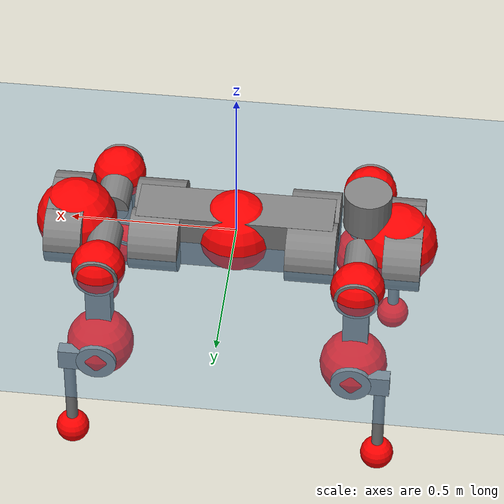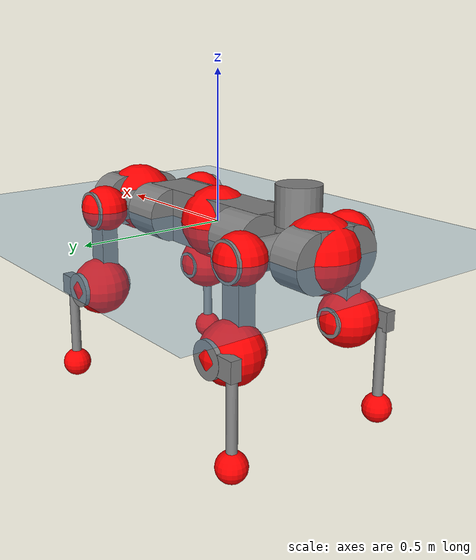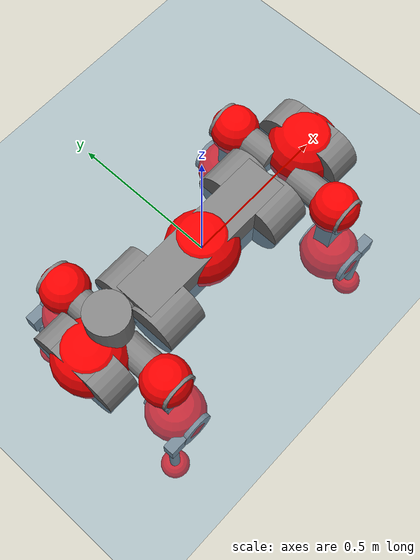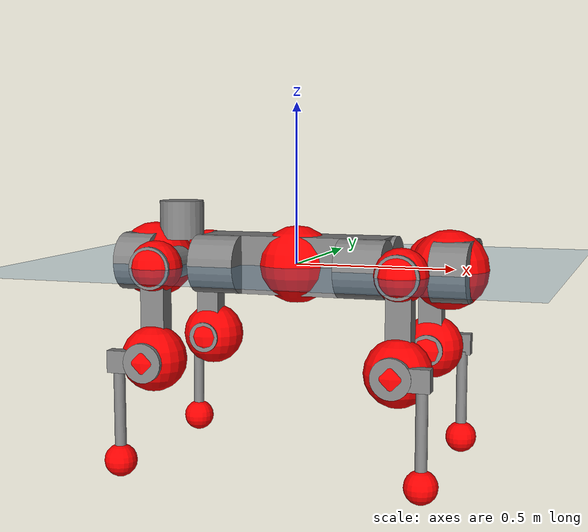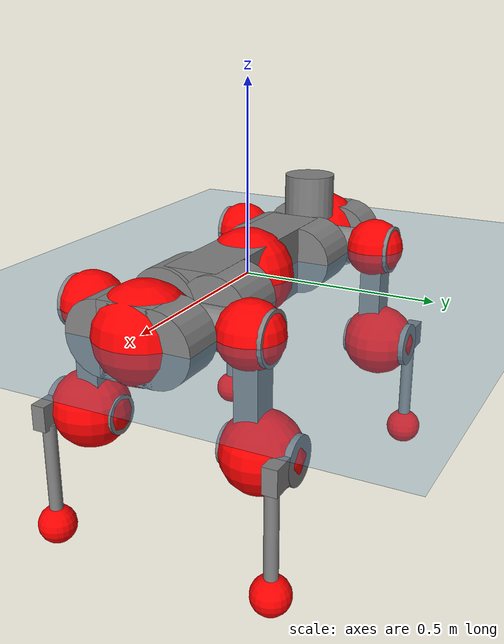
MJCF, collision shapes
<mujoco model="anymal_c">
  <compiler angle="radian" assetdir="assets" balanceinertia="true" inertiafromgeom="false"/>

  <option timestep="0.005" density="1.2" viscosity="2e-05"/>

  <size nkey="1"/>

  <visual>
    <quality shadowsize="8192"/>
    <map shadowclip="0.5"/>
  </visual>

  <default>
    <default class="/">
      <material specular="0" shininess="0.25"/>
      <geom contype="0" conaffinity="0" group="1" solref="-1000 -80"/>
      <site size="0.01 0.005 0.005" group="5"/>
      <general forcelimited="true" forcerange="-80 80" biastype="affine" gainprm="80" biasprm="0 -80 -2"/>
      <default class="anymal_c">
        <joint armature="0.01" damping="0.01" frictionloss="0.1"/>
        <default class="visual">
          <geom type="mesh" group="2"/>
          <default class="visual_zflip"/>
        </default>
        <default class="collision">
          <geom type="cylinder" group="3"/>
          <default class="foot">
            <geom size="0.03 0 0" type="sphere" condim="6" priority="1" friction="0.8 0.02 0.01" solimp="0.015 1 0.03"/>
          </default>
        </default>
      </default>
      <default class="reward_collision_sphere">
        <geom group="5" rgba="1 0 0 1"/>
      </default>
    </default>
  </default>

  <asset>
    <texture type="skybox" colorspace="auto" name="//unnamed_texture_0" builtin="gradient" rgb1="0.95 0.95 0.95" rgb2="0.95 0.95 0.95" width="100" height="600"/>
    <texture type="2d" colorspace="auto" name="texplane" builtin="checker" rgb1="0.345 0.575 0.748" rgb2="0.345 0.575 0.748" markrgb="1 1 1" width="512" height="512"/>
    <texture type="2d" colorspace="linear" name="base" file="base.png"/>
    <texture type="2d" colorspace="linear" name="top_shell" file="top_shell.png"/>
    <texture type="2d" colorspace="linear" name="bottom_shell" file="bottom_shell.png"/>
    <texture type="2d" colorspace="linear" name="remote" file="remote.png"/>
    <texture type="2d" colorspace="linear" name="hatch" file="hatch.png"/>
    <texture type="2d" colorspace="linear" name="handle" file="handle.png"/>
    <texture type="2d" colorspace="linear" name="face" file="face.png"/>
    <texture type="2d" colorspace="linear" name="battery" file="battery.png"/>
    <texture type="2d" colorspace="linear" name="lidar_cage" file="lidar_cage.png"/>
    <texture type="2d" colorspace="linear" name="depth_camera" file="depth_camera.png"/>
    <texture type="2d" colorspace="linear" name="wide_angle_camera" file="wide_angle_camera.png"/>
    <texture type="2d" colorspace="linear" name="lidar" file="lidar.png"/>
    <texture type="2d" colorspace="linear" name="drive" file="drive.png"/>
    <texture type="2d" colorspace="linear" name="hip_l" file="hip_l.png"/>
    <texture type="2d" colorspace="linear" name="shank_l" file="shank_l.png"/>
    <texture type="2d" colorspace="linear" name="foot" file="foot.png"/>
    <texture type="2d" colorspace="linear" name="thigh" file="thigh.png"/>
    <texture type="2d" colorspace="linear" name="shank_r" file="shank_r.png"/>
    <texture type="2d" colorspace="linear" name="hip_r" file="hip_r.png"/>
    <material name="MatPlane" class="/" texture="texplane" texuniform="true" texrepeat="2 2" specular="0.9" shininess="0.5"/>
    <material name="black_plastic" class="/" rgba="0.007 0.007 0.007 1"/>
    <material name="green" class="/" rgba="0.052 0.178 0.033 1"/>
    <material name="red" class="/" rgba="0.178 0.006 0.005 1"/>
    <material name="yellow" class="/" rgba="0.178 0.119 0.006 1"/>
    <material name="lwl" class="/" rgba="0.8 0.8 0.8 1"/>
    <material name="base" class="/" texture="base"/>
    <material name="top_shell" class="/" texture="top_shell"/>
    <material name="bottom_shell" class="/" texture="bottom_shell"/>
    <material name="hip_l" class="/" texture="hip_l"/>
    <material name="thigh" class="/" texture="thigh"/>
    <material name="shank_l" class="/" texture="shank_l"/>
    <material name="foot" class="/" texture="foot"/>
    <material name="hip_r" class="/" texture="hip_r"/>
    <material name="shank" class="/" texture="shank_r"/>
    <material name="hatch" class="/" texture="hatch"/>
    <material name="remote" class="/" texture="remote"/>
    <material name="handle" class="/" texture="handle"/>
    <material name="face" class="/" texture="face"/>
    <material name="depth_camera" class="/" texture="depth_camera"/>
    <material name="wide_angle_camera" class="/" texture="wide_angle_camera"/>
    <material name="battery" class="/" texture="battery"/>
    <material name="lidar_cage" class="/" texture="lidar_cage"/>
    <material name="lidar" class="/" texture="lidar"/>
    <material name="drive" class="/" texture="drive"/>
    <mesh name="base_0" class="/" file="base_0.obj"/>
    <mesh name="base_1" class="/" file="base_1.obj"/>
    <mesh name="base_2" class="/" file="base_2.obj"/>
    <mesh name="base_3" class="/" file="base_3.obj"/>
    <mesh name="base_4" class="/" file="base_4.obj"/>
    <mesh name="base_5" class="/" file="base_5.obj"/>
    <mesh name="top_shell" class="/" file="top_shell.obj"/>
    <mesh name="bottom_shell" class="/" file="bottom_shell.obj"/>
    <mesh name="remote" class="/" file="remote.obj"/>
    <mesh name="handle" class="/" file="handle.obj"/>
    <mesh name="face" class="/" file="face.obj"/>
    <mesh name="wide_angle_camera" class="/" file="wide_angle_camera.obj"/>
    <mesh name="depth_camera" class="/" file="depth_camera.obj"/>
    <mesh name="battery" class="/" file="battery.obj"/>
    <mesh name="lidar_cage" class="/" file="lidar_cage.obj"/>
    <mesh name="lidar" class="/" file="lidar.obj"/>
    <mesh name="drive" class="/" file="drive.obj"/>
    <mesh name="hip_l" class="/" file="hip_l.obj"/>
    <mesh name="thigh" class="/" file="thigh.obj"/>
    <mesh name="shank_l" class="/" file="shank_l.obj"/>
    <mesh name="foot" class="/" file="foot.obj"/>
    <mesh name="hip_r" class="/" file="hip_r.obj"/>
    <mesh name="hatch" class="/" file="hatch.obj"/>
    <mesh name="shank_r" class="/" file="shank_r.obj"/>
  </asset>

  <worldbody>
    <geom name="floor" class="/" size="100 100 0.125" type="plane" group="0" material="MatPlane"/>
    <light name="toplight_shadow" class="/" pos="0 0 5" dir="0.0990148 0.0990148 -0.990148" type="directional" ambient="0.04 0.04 0.04" diffuse="0.55 0.55 0.55" specular="0.12 0.12 0.12"/>
    <light name="toplight_fill" class="/" pos="0 0 5" dir="0.0990148 0.0990148 -0.990148" type="directional" castshadow="false" ambient="0.04 0.04 0.04" diffuse="0.3 0.3 0.3" specular="0.08 0.08 0.08"/>
    <body name="trunk" childclass="anymal_c" pos="0.000917504 0.000223836 -0.00102213" quat="1 0.000326692 -0.000107835 -1.67195e-05">
      <inertial pos="-3.61677e-05 -0.00206524 0.0485517" quat="0.498197 0.50242 0.500605 0.498767" mass="20.4783" diaginertia="0.912861 0.568261 0.199823"/>
      <joint name="//unnamed_joint_0" type="free" armature="0" damping="0" frictionloss="0"/>
      <geom name="//unnamed_geom_1" class="visual" material="green" mesh="base_0"/>
      <geom name="//unnamed_geom_2" class="visual" material="yellow" mesh="base_1"/>
      <geom name="//unnamed_geom_3" class="visual" material="red" mesh="base_2"/>
      <geom name="//unnamed_geom_4" class="visual" material="black_plastic" mesh="base_3"/>
      <geom name="//unnamed_geom_5" class="visual" material="lwl" mesh="base_4"/>
      <geom name="//unnamed_geom_6" class="visual" material="base" mesh="base_5"/>
      <geom name="trunk_1" class="collision" size="0.293732 0.0709008 0.0911582" type="box"/>
      <geom name="trunk_2" class="collision" size="0.0911582 0.073433" pos="0.233414 0.0686726 0" quat="0.707107 0 0.707107 0"/>
      <geom name="trunk_3" class="collision" size="0.0911582 0.073433" pos="-0.233414 0.0686726 0" quat="0.707107 0 0.707107 0"/>
      <geom name="trunk_4" class="collision" size="0.0911582 0.073433" pos="0.233414 -0.0686726 0" quat="0.707107 0 0.707107 0"/>
      <geom name="trunk_5" class="collision" size="0.0911582 0.073433" pos="-0.233414 -0.0686726 0" quat="0.707107 0 0.707107 0"/>
      <geom name="//unnamed_geom_12" class="visual" material="top_shell" mesh="top_shell"/>
      <geom name="//unnamed_geom_13" class="visual" material="bottom_shell" mesh="bottom_shell"/>
      <geom name="//unnamed_geom_14" class="visual" material="remote" mesh="remote"/>
      <geom name="//unnamed_geom_15" class="visual" material="handle" mesh="handle"/>
      <geom name="//unnamed_geom_16" class="visual" pos="0.444829 0 0" quat="1 0 0 0" material="face" mesh="face"/>
      <geom name="trunk_6" class="collision" size="0.0557078 0.0709008 0.0911582" pos="0.503853 0 0" type="box"/>
      <geom name="//unnamed_geom_18" class="collision" size="0.0911582 0.0557078" pos="0.503853 0.0686726 0" quat="0.707107 0 0.707107 0"/>
      <geom name="//unnamed_geom_19" class="collision" size="0.0911582 0.0557078" pos="0.503853 -0.0686726 0" quat="0.707107 0 0.707107 0"/>
      <geom name="//unnamed_geom_20" class="visual" pos="0.495425 0 -0.0280698" quat="0.965926 0 0.258819 0" material="depth_camera" mesh="depth_camera"/>
      <geom name="//unnamed_geom_21" class="visual" pos="0.550536 0 0.0147365" material="wide_angle_camera" mesh="wide_angle_camera"/>
      <geom name="//unnamed_geom_22" class="visual_zflip" pos="-0.444829 0 0" quat="0 0 0 1" material="face" mesh="face"/>
      <geom name="trunk_7" class="collision" size="0.0557078 0.0709008 0.0911582" pos="-0.503853 0 0" quat="0 0 0 1" type="box"/>
      <geom name="//unnamed_geom_24" class="collision" size="0.0911582 0.0557078" pos="-0.503853 -0.0686726 0" quat="0 -0.707107 0 0.707107"/>
      <geom name="//unnamed_geom_25" class="collision" size="0.0911582 0.0557078" pos="-0.503853 0.0686726 0" quat="0 -0.707107 0 0.707107"/>
      <geom name="//unnamed_geom_26" class="visual" pos="-0.495425 0 -0.0280698" quat="0 -0.258819 0 0.965926" material="depth_camera" mesh="depth_camera"/>
      <geom name="//unnamed_geom_27" class="visual_zflip" pos="-0.550536 0 0.0147365" quat="0 0 0 1" material="wide_angle_camera" mesh="wide_angle_camera"/>
      <geom name="//unnamed_geom_28" class="visual" material="battery" mesh="battery"/>
      <geom name="//unnamed_geom_29" class="visual" pos="0 0.0737975 0.0292715" quat="0.683013 -0.183013 0.183013 0.683013" material="depth_camera" mesh="depth_camera"/>
      <geom name="//unnamed_geom_30" class="visual" pos="0 -0.0737975 0.0292715" quat="0.683013 0.183013 0.183013 -0.683013" material="depth_camera" mesh="depth_camera"/>
      <geom name="//unnamed_geom_31" class="visual" pos="-0.390634 0 0.0723534" quat="1 0 0 0" material="lidar_cage" mesh="lidar_cage"/>
      <geom name="trunk_8" class="collision" size="0.0709008 0.0607721" pos="-0.390634 0 0.131417"/>
      <geom name="//unnamed_geom_33" class="visual" pos="-0.390634 -3.61959e-05 0.139982" quat="0.707107 0 0 -0.707107" material="lidar" mesh="lidar"/>
      <geom name="//unnamed_geom_34" class="visual" pos="0.321843 0.102029 -5.79956e-11" quat="0.258819 0.965926 0 0" material="drive" mesh="drive"/>
      <geom name="//unnamed_geom_35" class="visual" pos="0.321843 -0.102029 5.79956e-11" quat="0.258819 -0.965926 0 0" material="drive" mesh="drive"/>
      <geom name="//unnamed_geom_36" class="visual" pos="-0.321843 0.102029 5.79956e-11" quat="0 0 0.965926 -0.258819" material="drive" mesh="drive"/>
      <geom name="//unnamed_geom_37" class="visual" pos="-0.321843 -0.102029 -5.79956e-11" quat="0 0 -0.965926 -0.258819" material="drive" mesh="drive"/>
      <geom name="//unnamed_geom_38" class="visual" pos="0.124488 0 0.0718612" quat="1 0 0 0" material="hatch" mesh="hatch"/>
      <geom name="//unnamed_geom_39" class="reward_collision_sphere" size="0.121544"/>
      <geom name="//unnamed_geom_40" class="reward_collision_sphere" size="0.121544" pos="0.482926 0 0"/>
      <geom name="//unnamed_geom_41" class="reward_collision_sphere" size="0.121544" pos="-0.482926 0 0"/>
      <site name="imu" pos="0.278355 0.00759868 0.0342758" size="0.0101287"/>
      <camera name="track" pos="0 -1.96208 0" quat="0.707107 0.707107 0 0" mode="trackcom"/>
      <camera name="ego_camera" pos="0.482926 0 -0.039376" quat="-0.5 -0.5 0.5 0.5"/>
      <body name="LF_HIP" pos="0.32115 0.101236 -0.000396422" quat="0.258802 0.96593 -1.13386e-05 1.55661e-05">
        <inertial pos="0.0609215 -0.0158478 -0.00860198" quat="-0.127485 0.709613 -0.135607 0.679564" mass="2.78507" diaginertia="0.00803771 0.00424132 0.0029485"/>
        <joint name="LF_HAA" pos="0 0 0" axis="0.999987 0.00468235 -0.00178722" range="-0.719721 0.472692" armature="0.0102865" damping="0.0110752" frictionloss="0.0979998"/>
        <geom name="//unnamed_geom_42" class="visual" pos="0 -3.41162e-06 5.60355e-07" quat="0.258819 -0.965926 0 0" material="hip_l" mesh="hip_l"/>
        <geom name="//unnamed_geom_43" class="visual" pos="0.0642828 -0.0766805 -0.0442964" quat="0.183013 -0.683013 0.683013 0.183013" material="drive" mesh="drive"/>
        <geom name="//unnamed_geom_44" class="collision" size="0.0506434 0.0709008" pos="0.0642828 -0.011733 -0.00679728" quat="-0.353553 -0.612372 0.612372 -0.353553"/>
        <body name="LF_THIGH" pos="0.0647717 -0.0693313 -0.0412416" quat="0.183506 -0.68242 0.683297 0.18367">
          <inertial pos="0.0336846 7.7643e-05 -0.241962" quat="0.993221 -0.0118905 -0.0802491 0.0832452" mass="3.13408" diaginertia="0.0428295 0.0261364 0.003792"/>
          <joint name="LF_HFE" pos="0 0 0" axis="0.999999 -0.0011942 0.000378017" stiffness="0.00407923" range="-3.10615 3.14914" armature="0.0106008" damping="0.015068" frictionloss="0.10146"/>
          <geom name="//unnamed_geom_45" class="visual" pos="0.00183305 2.88846e-06 0" quat="0.707107 0 0 -0.707107" material="thigh" mesh="thigh"/>
          <geom name="//unnamed_geom_46" class="collision" size="0.0658365 0.0405148" pos="0.0429268 0 0" quat="0.5 0.5 -0.5 -0.5"/>
          <geom name="//unnamed_geom_47" class="collision" size="0.0379826 0.0303861 0.143133" pos="0.0321951 0 -0.139109" quat="0.707107 0 0 -0.707107" type="box"/>
          <geom name="//unnamed_geom_48" class="visual" pos="0.107639 0 -0.280554" quat="1 0 0 0" material="drive" mesh="drive"/>
          <geom name="//unnamed_geom_49" class="collision" size="0.0506434 0.0709008" pos="0.032517 0 -0.280554" quat="0.707107 0 0.707107 0"/>
          <geom name="//unnamed_geom_50" class="reward_collision_sphere" size="0.0810295" pos="0.0268292 0 0"/>
          <body name="LF_SHANK" pos="0.107348 0.00161687 -0.281704" quat="1 0.0001183 0.000334589 9.77758e-05">
            <inertial pos="0.00602683 -0.0607516 -0.0788805" quat="0.993034 -0.114887 -0.00103752 -0.0261413" mass="0.612555" diaginertia="0.0142119 0.00847755 0.00103066"/>
            <joint name="LF_KFE" pos="0 0 0" axis="1 0.000253596 -2.68838e-05" range="-3.13003 3.13313" armature="0.00963357" damping="0.0124614" frictionloss="0.099642"/>
            <geom name="//unnamed_geom_51" class="visual" pos="0.000597718 0.00318706 0" quat="0.707107 0 0 -0.707107" material="shank_l" mesh="shank_l"/>
            <geom name="LF_kfe_act" class="collision" size="0.0607721 0.0202574" pos="0.0214634 0 0" quat="0.5 0.5 -0.5 -0.5"/>
            <geom name="//unnamed_geom_53" class="collision" size="0.0582389 0.0341843 0.0192445" pos="0.0214634 -0.0564087 0" quat="0.5 0.5 -0.5 -0.5" type="box"/>
            <geom name="//unnamed_geom_54" class="visual" pos="0.0140047 -0.0852552 -0.332698" quat="0.382683 0 0 -0.92388" material="foot" mesh="foot"/>
            <geom name="LF_calf" class="collision" size="0.0177252 0.14307" pos="0.0140049 -0.0862823 -0.166349" quat="0.707107 0 0 -0.707107"/>
            <geom name="LF_foot" class="foot" size="0.0299668" pos="0.0140049 -0.0862823 -0.310549" quat="0.707107 0 0 -0.707107"/>
            <geom name="//unnamed_geom_57" class="reward_collision_sphere" size="0.101287" pos="-0.0536585 0 0"/>
            <geom name="//unnamed_geom_58" class="reward_collision_sphere" size="0.0506434" pos="0.0140049 -0.0862823 -0.310549"/>
            <site name="LF_foot" class="foot" pos="0.0140049 -0.0862823 -0.310549" quat="0.707107 0 0 -0.707107" size="0.0101287"/>
          </body>
        </body>
      </body>
      <body name="RF_HIP" pos="0.320094 -0.102109 0.0014617" quat="0.258742 -0.965947 -2.74128e-05 0.000128177">
        <inertial pos="0.0605959 0.0128244 -0.00886354" quat="0.123043 0.681173 0.127124 0.710424" mass="2.86247" diaginertia="0.0081668 0.00458489 0.00298885"/>
        <joint name="RF_HAA" pos="0 0 0" axis="0.999986 0.00225398 -0.00481344" stiffness="0.000435121" range="-0.493842 0.717195" armature="0.0101804" damping="0.00352098" frictionloss="0.0963303"/>
        <geom name="//unnamed_geom_59" class="visual" pos="0 3.41159e-06 5.60354e-07" quat="0.258819 0.965926 0 0" material="hip_r" mesh="hip_r"/>
        <geom name="//unnamed_geom_60" class="visual" pos="0.0642828 0.0766805 -0.0442964" quat="0.183013 0.683013 0.683013 -0.183013" material="drive" mesh="drive"/>
        <geom name="//unnamed_geom_61" class="collision" size="0.0506434 0.0709008" pos="0.0642828 0.011733 -0.00679728" quat="-0.353553 0.612372 0.612372 0.353553"/>
        <body name="RF_THIGH" pos="0.0644221 0.0717007 -0.0432768" quat="0.183138 0.682684 0.683428 -0.182564">
          <inertial pos="0.0354596 0.00101475 -0.241427" quat="0.992709 -0.0049176 -0.0812182 0.0889276" mass="3.26443" diaginertia="0.043076 0.0267281 0.00399989"/>
          <joint name="RF_HFE" pos="0 0 0" axis="0.999999 -0.00074513 -0.000668844" stiffness="0.000636312" range="-3.16238 3.1459" armature="0.00989193" damping="0.01143" frictionloss="0.0971711"/>
          <geom name="//unnamed_geom_62" class="visual" pos="0.00183305 2.88846e-06 0" quat="0.707107 0 0 -0.707107" material="thigh" mesh="thigh"/>
          <geom name="//unnamed_geom_63" class="collision" size="0.0658365 0.0405148" pos="0.0429268 0 0" quat="0.5 0.5 0.5 0.5"/>
          <geom name="//unnamed_geom_64" class="collision" size="0.0379826 0.0303861 0.143133" pos="0.0321951 0 -0.139109" quat="0.707107 0 0 0.707107" type="box"/>
          <geom name="//unnamed_geom_65" class="visual" pos="0.107639 0 -0.280554" quat="1 0 0 0" material="drive" mesh="drive"/>
          <geom name="//unnamed_geom_66" class="collision" size="0.0506434 0.0709008" pos="0.032517 0 -0.280554" quat="0.707107 0 0.707107 0"/>
          <geom name="//unnamed_geom_67" class="reward_collision_sphere" size="0.0810295" pos="0.0268292 0 0"/>
          <body name="RF_SHANK" pos="0.10726 -0.000310875 -0.279335" quat="1 7.5803e-08 -3.14136e-06 -3.07724e-07">
            <inertial pos="0.00486498 0.0601711 -0.0791781" quat="0.992137 0.123622 0.00565799 0.0186863" mass="0.622869" diaginertia="0.0145655 0.00861061 0.0010526"/>
            <joint name="RF_KFE" pos="0 0 0" axis="1 -0.000387167 0.000302921" range="-3.18044 3.13205" armature="0.0109695" damping="0.0202855" frictionloss="0.0978904"/>
            <geom name="//unnamed_geom_68" class="visual" pos="0.000597715 -0.00318706 0" quat="0.707107 0 0 0.707107" material="shank" mesh="shank_r"/>
            <geom name="RF_kfe_act" class="collision" size="0.0607721 0.0202574" pos="0.0214634 0 0" quat="0.5 0.5 0.5 0.5"/>
            <geom name="//unnamed_geom_70" class="collision" size="0.0582389 0.0341843 0.0192445" pos="0.0214634 0.0564087 0" quat="0.5 0.5 0.5 0.5" type="box"/>
            <geom name="//unnamed_geom_71" class="visual" pos="0.014005 0.0852552 -0.332698" quat="0.382683 0 0 0.92388" material="foot" mesh="foot"/>
            <geom name="RF_calf" class="collision" size="0.0177252 0.14307" pos="0.0140049 0.0862823 -0.166349" quat="0.707107 0 0 0.707107"/>
            <geom name="RF_foot" class="foot" size="0.0278872" pos="0.0140049 0.0862823 -0.310549" quat="0.707107 0 0 0.707107"/>
            <geom name="//unnamed_geom_74" class="reward_collision_sphere" size="0.101287" pos="-0.0536585 0 0"/>
            <geom name="//unnamed_geom_75" class="reward_collision_sphere" size="0.0506434" pos="0.0140049 0.0862823 -0.310549"/>
            <site name="RF_foot" class="foot" pos="0.0140049 0.0862823 -0.310549" quat="0.707107 0 0 0.707107" size="0.0101287"/>
          </body>
        </body>
      </body>
      <body name="LH_HIP" pos="-0.319103 0.101426 -0.00074251" quat="-0.000181929 -0.000168981 0.965927 -0.258816">
        <inertial pos="0.0609874 0.0154733 -0.0106447" quat="0.128575 0.681096 0.130331 0.708936" mass="2.96986" diaginertia="0.00886027 0.00464232 0.00313845"/>
        <joint name="LH_HAA" pos="0 0 0" axis="0.999954 -0.000888113 0.00952512" range="-0.488211 0.702772" armature="0.00998213" damping="0" frictionloss="0.100778"/>
        <geom name="//unnamed_geom_76" class="visual" pos="0 3.41159e-06 5.60354e-07" quat="-0.258819 -0.965926 0 0" material="hip_r" mesh="hip_r"/>
        <geom name="//unnamed_geom_77" class="visual" pos="0.0642828 0.0766805 -0.0442964" quat="0.183013 0.683013 0.683013 -0.183013" material="drive" mesh="drive"/>
        <geom name="//unnamed_geom_78" class="collision" size="0.0506434 0.0709008" pos="0.0642828 0.011733 -0.00679728" quat="-0.353553 0.612372 0.612372 0.353553"/>
        <body name="LH_THIGH" pos="0.0640665 0.0714718 -0.0427407" quat="0.182398 0.682976 0.683185 -0.183119">
          <inertial pos="0.0305839 -0.00112228 -0.244072" quat="0.992751 -0.00651801 -0.0814042 0.0881798" mass="3.18851" diaginertia="0.0412386 0.0271468 0.00377801"/>
          <joint name="LH_HFE" pos="0 0 0" axis="0.999998 0.00115997 0.00156268" stiffness="0.00561449" range="-3.13595 3.12764" armature="0.00985169" damping="0.00234002" frictionloss="0.101155"/>
          <geom name="//unnamed_geom_79" class="visual" pos="0.00183305 2.88846e-06 0" quat="0.707107 0 0 -0.707107" material="thigh" mesh="thigh"/>
          <geom name="//unnamed_geom_80" class="collision" size="0.0658365 0.0405148" pos="0.0429268 0 0" quat="0.5 0.5 -0.5 -0.5"/>
          <geom name="//unnamed_geom_81" class="collision" size="0.0379826 0.0303861 0.143133" pos="0.0321951 0 -0.139109" quat="0.707107 0 0 -0.707107" type="box"/>
          <geom name="//unnamed_geom_82" class="visual" pos="0.107639 0 -0.280554" quat="1 0 0 0" material="drive" mesh="drive"/>
          <geom name="//unnamed_geom_83" class="collision" size="0.0506434 0.0709008" pos="0.032517 0 -0.280554" quat="0.707107 0 0.707107 0"/>
          <geom name="//unnamed_geom_84" class="reward_collision_sphere" size="0.0810295" pos="0.0268292 0 0"/>
          <body name="LH_SHANK" pos="0.108136 -0.00184533 -0.279145" quat="1 1.49618e-05 -5.18165e-05 -0.000115417">
            <inertial pos="0.0055209 0.0619777 -0.0783436" quat="0.992936 0.115479 -0.00136968 0.0272165" mass="0.631817" diaginertia="0.0148012 0.00887006 0.00105385"/>
            <joint name="LH_KFE" pos="0 0 0" axis="0.999984 0.00566952 -0.000120676" range="-3.10874 3.12438" armature="0.0112697" damping="0.0198243" frictionloss="0.0928335"/>
            <geom name="//unnamed_geom_85" class="visual" pos="0.000597715 -0.00318706 0" quat="-0.707107 0 0 -0.707107" material="shank" mesh="shank_r"/>
            <geom name="LH_kfe_act" class="collision" size="0.0607721 0.0202574" pos="0.0214634 0 0" quat="0.5 0.5 -0.5 -0.5"/>
            <geom name="//unnamed_geom_87" class="collision" size="0.0582389 0.0341843 0.0192445" pos="0.0214634 0.0564087 0" quat="0.5 0.5 -0.5 -0.5" type="box"/>
            <geom name="//unnamed_geom_88" class="visual" pos="0.014005 0.0852552 -0.332698" quat="-0.382683 0 0 -0.92388" material="foot" mesh="foot"/>
            <geom name="LH_calf" class="collision" size="0.0177252 0.14307" pos="0.0140049 0.0862823 -0.166349" quat="0.707107 0 0 -0.707107"/>
            <geom name="LH_foot" class="foot" size="0.0306394" pos="0.0140049 0.0862823 -0.310549" quat="0.707107 0 0 -0.707107"/>
            <geom name="//unnamed_geom_91" class="reward_collision_sphere" size="0.101287" pos="-0.0536585 0 0"/>
            <geom name="//unnamed_geom_92" class="reward_collision_sphere" size="0.0506434" pos="0.0140049 0.0862823 -0.310549"/>
            <site name="LH_foot" class="foot" pos="0.0140049 0.0862823 -0.310549" quat="0.707107 0 0 -0.707107" size="0.0101287"/>
          </body>
        </body>
      </body>
      <body name="RH_HIP" pos="-0.319215 -0.102337 1.4671e-05" quat="-5.26934e-05 0.000143344 -0.965897 -0.258926">
        <inertial pos="0.0606452 -0.0153342 -0.0107848" quat="-0.126266 0.702282 -0.13034 0.688381" mass="2.85637" diaginertia="0.00809068 0.00431013 0.0029458"/>
        <joint name="RH_HAA" pos="0 0 0" axis="0.999924 0.00127092 -0.0122644" range="-0.76576 0.489026" armature="0.0105183" damping="0.0102668" frictionloss="0.100695"/>
        <geom name="//unnamed_geom_93" class="visual" pos="0 -3.41162e-06 5.60355e-07" quat="-0.258819 0.965926 0 0" material="hip_l" mesh="hip_l"/>
        <geom name="//unnamed_geom_94" class="visual" pos="0.0642828 -0.0766805 -0.0442964" quat="-0.183013 0.683013 -0.683013 -0.183013" material="drive" mesh="drive"/>
        <geom name="//unnamed_geom_95" class="collision" size="0.0506434 0.0709008" pos="0.0642828 -0.011733 -0.00679728" quat="0.353553 0.612372 -0.612372 0.353553"/>
        <body name="RH_THIGH" pos="0.0665851 -0.0717563 -0.0432695" quat="-0.182535 0.682696 -0.683512 -0.182806">
          <inertial pos="0.033606 4.4869e-08 -0.242516" quat="0.993186 -0.0057201 -0.0799205 0.0846231" mass="3.12741" diaginertia="0.0421839 0.0268487 0.00383971"/>
          <joint name="RH_HFE" pos="0 0 0" axis="0.999995 -0.00145629 0.00273056" stiffness="0.00181209" range="-3.13694 3.16196" armature="0.010279" damping="0.00701569" frictionloss="0.101309"/>
          <geom name="//unnamed_geom_96" class="visual" pos="0.00183305 2.88846e-06 0" quat="0.707107 0 0 -0.707107" material="thigh" mesh="thigh"/>
          <geom name="//unnamed_geom_97" class="collision" size="0.0658365 0.0405148" pos="0.0429268 0 0" quat="0.5 0.5 0.5 0.5"/>
          <geom name="//unnamed_geom_98" class="collision" size="0.0379826 0.0303861 0.143133" pos="0.0321951 0 -0.139109" quat="0.707107 0 0 0.707107" type="box"/>
          <geom name="//unnamed_geom_99" class="visual" pos="0.107639 0 -0.280554" quat="1 0 0 0" material="drive" mesh="drive"/>
          <geom name="//unnamed_geom_100" class="collision" size="0.0506434 0.0709008" pos="0.032517 0 -0.280554" quat="0.707107 0 0.707107 0"/>
          <geom name="//unnamed_geom_101" class="reward_collision_sphere" size="0.0810295" pos="0.0268292 0 0"/>
          <body name="RH_SHANK" pos="0.107319 0.00193916 -0.280018" quat="0.999999 1.83101e-05 0.000239296 0.00105985">
            <inertial pos="0.00757901 -0.059232 -0.0803916" quat="0.993617 -0.109594 -0.00179226 -0.0266672" mass="0.623295" diaginertia="0.0145765 0.00840223 0.00104349"/>
            <joint name="RH_KFE" pos="0 0 0" axis="0.999996 0.00202405 -0.00199903" range="-3.1278 3.1772" armature="0.0100752" damping="0.0202048" frictionloss="0.0977221"/>
            <geom name="//unnamed_geom_102" class="visual" pos="0.000597718 0.00318706 0" quat="0.707107 0 0 -0.707107" material="shank_l" mesh="shank_l"/>
            <geom name="RH_kfe_act" class="collision" size="0.0607721 0.0202574" pos="0.0214634 0 0" quat="0.5 0.5 0.5 0.5"/>
            <geom name="//unnamed_geom_104" class="collision" size="0.0582389 0.0341843 0.0192445" pos="0.0214634 -0.0564087 0" quat="0.5 0.5 0.5 0.5" type="box"/>
            <geom name="//unnamed_geom_105" class="visual" pos="0.0140047 -0.0852552 -0.332698" quat="0.382683 0 0 -0.92388" material="foot" mesh="foot"/>
            <geom name="RH_calf" class="collision" size="0.0177252 0.14307" pos="0.0140049 -0.0862823 -0.166349" quat="0.707107 0 0 0.707107"/>
            <geom name="RH_foot" class="foot" size="0.0281376" pos="0.0140049 -0.0862823 -0.310549" quat="0.707107 0 0 0.707107"/>
            <geom name="//unnamed_geom_108" class="reward_collision_sphere" size="0.101287" pos="-0.0536585 0 0"/>
            <geom name="//unnamed_geom_109" class="reward_collision_sphere" size="0.0506434" pos="0.0140049 -0.0862823 -0.310549"/>
            <site name="RH_foot" class="foot" pos="0.0140049 -0.0862823 -0.310549" quat="0.707107 0 0 0.707107" size="0.0101287"/>
          </body>
        </body>
      </body>
    </body>
  </worldbody>

  <contact>
    <pair class="/" geom1="floor" geom2="LF_foot" name="//unnamed_contact_0"/>
    <pair class="/" geom1="floor" geom2="RF_foot" name="//unnamed_contact_1"/>
    <pair class="/" geom1="floor" geom2="LH_foot" name="//unnamed_contact_2"/>
    <pair class="/" geom1="floor" geom2="RH_foot" name="//unnamed_contact_3"/>
  </contact>

  <actuator>
    <general name="LF_HAA" class="/" joint="LF_HAA" forcerange="-78.1674 78.1674" gainprm="81.6718" biasprm="0 -81.6718 -1.9774"/>
    <general name="LF_HFE" class="/" joint="LF_HFE" forcerange="-73.8863 73.8863" gainprm="81.6718" biasprm="0 -81.6718 -1.9774"/>
    <general name="LF_KFE" class="/" joint="LF_KFE" forcerange="-84.4716 84.4716" gainprm="81.6718" biasprm="0 -81.6718 -1.9774"/>
    <general name="RF_HAA" class="/" joint="RF_HAA" forcerange="-83.0959 83.0959" gainprm="81.6718" biasprm="0 -81.6718 -1.9774"/>
    <general name="RF_HFE" class="/" joint="RF_HFE" forcerange="-86.1514 86.1514" gainprm="81.6718" biasprm="0 -81.6718 -1.9774"/>
    <general name="RF_KFE" class="/" joint="RF_KFE" forcerange="-82.5893 82.5893" gainprm="81.6718" biasprm="0 -81.6718 -1.9774"/>
    <general name="LH_HAA" class="/" joint="LH_HAA" forcerange="-80.8212 80.8212" gainprm="81.6718" biasprm="0 -81.6718 -1.9774"/>
    <general name="LH_HFE" class="/" joint="LH_HFE" forcerange="-78.6853 78.6853" gainprm="81.6718" biasprm="0 -81.6718 -1.9774"/>
    <general name="LH_KFE" class="/" joint="LH_KFE" forcerange="-79.232 79.232" gainprm="81.6718" biasprm="0 -81.6718 -1.9774"/>
    <general name="RH_HAA" class="/" joint="RH_HAA" forcerange="-80.1008 80.1008" gainprm="81.6718" biasprm="0 -81.6718 -1.9774"/>
    <general name="RH_HFE" class="/" joint="RH_HFE" forcerange="-87.4245 87.4245" gainprm="81.6718" biasprm="0 -81.6718 -1.9774"/>
    <general name="RH_KFE" class="/" joint="RH_KFE" forcerange="-78.9632 78.9632" gainprm="81.6718" biasprm="0 -81.6718 -1.9774"/>
  </actuator>

  <sensor>
    <gyro site="imu" name="imu_angular_velocity"/>
    <velocimeter site="imu" name="imu_linear_velocity"/>
    <framelinvel objtype="site" objname="LF_foot" name="LF_foot_global_linear_velocity"/>
    <framelinvel objtype="site" objname="RF_foot" name="RF_foot_global_linear_velocity"/>
    <framelinvel objtype="site" objname="LH_foot" name="LH_foot_global_linear_velocity"/>
    <framelinvel objtype="site" objname="RH_foot" name="RH_foot_global_linear_velocity"/>
  </sensor>

  <keyframe>
    <key name="home" qpos="0 0 0.55 1 0 0 0 0 0.4 -0.8 0 -0.4 0.8 0 -0.4 0.8 0 0.4 -0.8"/>
  </keyframe>
</mujoco>
